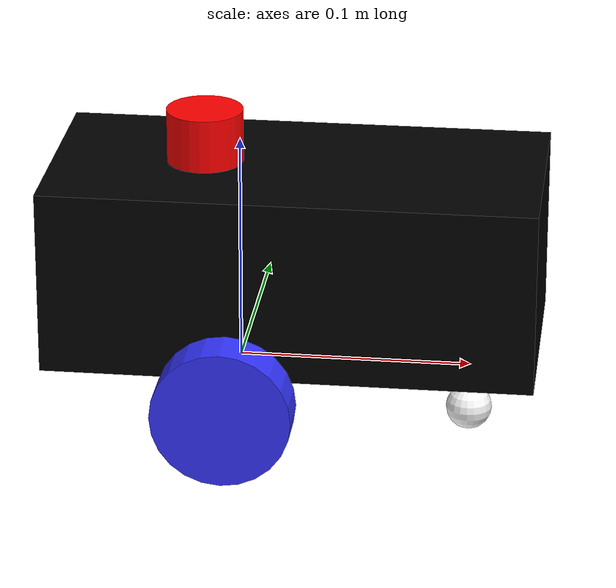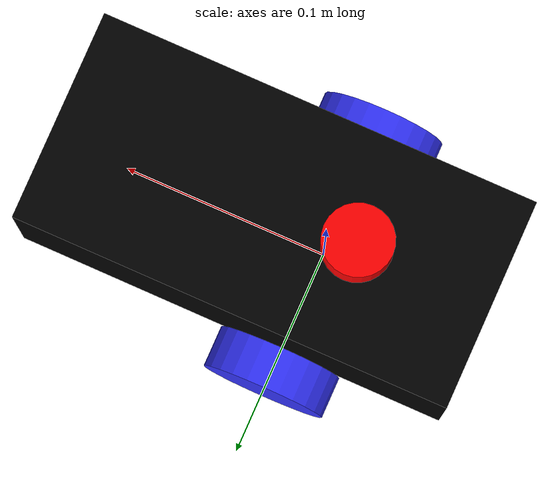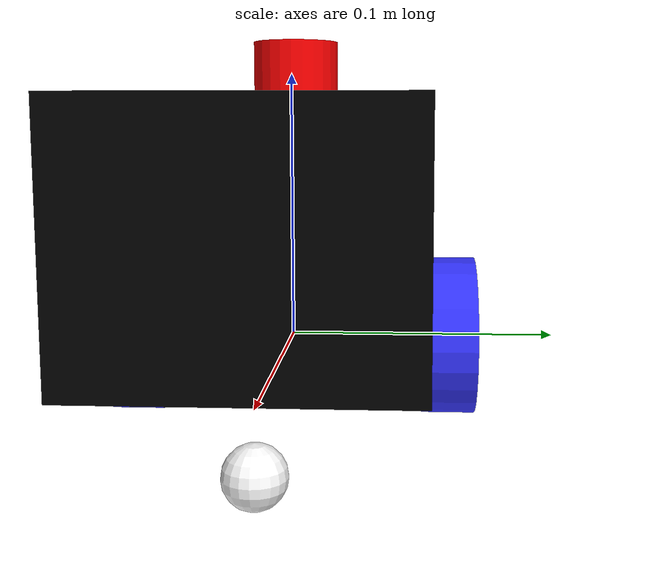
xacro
<?xml version="1.0"?>
<robot xmlns:xacro="http://www.ros.org/wiki/xacro"  name="robot">

  <xacro:arg name="use_ros2_control" default="true"/>
  <xacro:arg name="sim_mode" default="false"/>

  <xacro:include filename="robot_core.xacro" />

  <xacro:if value="$(arg use_ros2_control)">
      <xacro:include filename="ros2_control.xacro" />
  </xacro:if>
  <xacro:unless value="$(arg use_ros2_control)">
      <xacro:include filename="gazebo_control.xacro" />
  </xacro:unless>
  <xacro:include filename="lidar.xacro" />
  <xacro:include filename="imu.xacro" />

</robot>

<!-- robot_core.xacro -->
<robot xmlns:xacro="http://www.ros.org/wiki/xacro" >

    <xacro:include filename="inertial_macros.xacro"/>

    <xacro:property name="chassis_length" value="0.21"/>
    <xacro:property name="chassis_width" value="0.10"/>
    <xacro:property name="chassis_height" value="0.08"/>
    <xacro:property name="chassis_mass" value="1.0"/>
    <xacro:property name="wheel_radius" value="0.03"/>
    <xacro:property name="wheel_thickness" value="0.02"/>
    <xacro:property name="wheel_mass" value="0.05"/>
    <xacro:property name="wheel_offset_x" value="0.13"/>
    <xacro:property name="wheel_offset_y" value="0.06"/>
    <xacro:property name="wheel_offset_z" value="0.01"/>
    <xacro:property name="caster_wheel_radius" value="0.01"/>
    <xacro:property name="caster_wheel_mass" value="0.01"/>
    <xacro:property name="caster_wheel_offset_x" value="${chassis_length - 0.03}"/>
    <xacro:property name="caster_wheel_offset_z" value="${-wheel_offset_z - wheel_radius + caster_wheel_radius}"/>

    <material name="white">
        <color rgba="1 1 1 1" />
    </material>

    <material name="blue">
        <color rgba="0.2 0.2 1 1"/>
    </material>

    <material name="black">
        <color rgba="0 0 0 1"/>
    </material>

    <material name="red">
        <color rgba="1 0 0 1"/>
    </material>

    <!-- BASE LINK -->

    <link name="base_link">

    </link>

    <!-- BASE_FOOTPRINT LINK -->

    <joint name="base_footprint_joint" type="fixed">
        <parent link="base_link"/>
        <child link="base_footprint"/>
        <origin xyz="0 0 0" rpy="0 0 0"/>
    </joint>

    <link name="base_footprint">
    </link>

    <!-- CHASSIS LINK -->

    <joint name="chassis_joint" type="fixed">
        <parent link="base_link"/>
        <child link="chassis"/>
        <origin xyz="${-chassis_length + wheel_offset_x} 0 ${+wheel_offset_z}"/>
    </joint>

    <link name="chassis">
        <visual>
            <origin xyz="${chassis_length/2} 0 ${chassis_height/2}"/>
            <geometry>
                <box size="${chassis_length} ${chassis_width} ${chassis_height}"/>
            </geometry>
            <material name="black"/>
        </visual>
        <collision>
            <origin xyz="${chassis_length/2} 0 ${chassis_height/2}"/>
            <geometry>
                <box size="${chassis_length} ${chassis_width} ${chassis_height}"/>
            </geometry>
        </collision>
        <xacro:inertial_box mass="0.5" x="${chassis_length}" y="${chassis_width}" z="${chassis_height}">
            <origin xyz="${chassis_length/2} 0 ${chassis_height/2}" rpy="0 0 0"/>
        </xacro:inertial_box>
    </link>

    <gazebo reference="chassis">
        <material>Gazebo/Black</material>
    </gazebo>

    <!-- LEFT WHEEL LINK -->

    <joint name="left_wheel_joint" type="continuous">
        <parent link="base_link"/>
        <child link="left_wheel"/>
        <origin xyz="0 ${wheel_offset_y} 0" rpy="-${pi/2} 0 0" />
        <axis xyz="0 0 1"/>
    </joint>

    <link name="left_wheel">
        <visual>
            <geometry>
                <cylinder radius="${wheel_radius}" length="${wheel_thickness}"/>
            </geometry>
            <material name="blue"/>
        </visual>
        <collision>
            <geometry>
                <sphere radius="${wheel_radius}"/>
            </geometry>
        </collision>
        <xacro:inertial_cylinder mass="${wheel_mass}" length="${wheel_thickness}" radius="${wheel_radius}">
            <origin xyz="0 0 0" rpy="0 0 0"/>
        </xacro:inertial_cylinder>
    </link>

    <gazebo reference="left_wheel">
        <material>Gazebo/Blue</material>
    </gazebo>

    <!-- RIGHT WHEEL LINK -->

    <joint name="right_wheel_joint" type="continuous">
        <parent link="base_link"/>
        <child link="right_wheel"/>
        <origin xyz="0 ${-wheel_offset_y} 0" rpy="${pi/2} 0 0" />
        <axis xyz="0 0 -1"/>
    </joint>

    <link name="right_wheel">
        <visual>
            <geometry>
                <cylinder radius="${wheel_radius}" length="${wheel_thickness}"/>
            </geometry>
            <material name="blue"/>
        </visual>
        <collision>
            <geometry>
                <sphere radius="${wheel_radius}"/>
            </geometry>
        </collision>
        <xacro:inertial_cylinder mass="${wheel_mass}" length="${wheel_thickness}" radius="${wheel_radius}">
            <origin xyz="0 0 0" rpy="0 0 0"/>
        </xacro:inertial_cylinder>
    </link>

    <gazebo reference="right_wheel">
        <material>Gazebo/Blue</material>
    </gazebo>

    <!-- CASTER WHEEL LINK -->

    <joint name="caster_wheel_joint" type="fixed">
        <parent link="chassis"/>
        <child link="caster_wheel"/>
        <origin xyz="${caster_wheel_offset_x} 0 ${caster_wheel_offset_z}"/>
    </joint>

    <link name="caster_wheel">
        <visual>
            <geometry>
                <sphere radius="${caster_wheel_radius}"/>
            </geometry>
            <material name="white"/>
        </visual>
        <collision>
            <geometry>
                <sphere radius="${caster_wheel_radius}"/>
            </geometry>
        </collision>
        <xacro:inertial_sphere mass="${caster_wheel_mass}" radius="${caster_wheel_radius}">
            <origin xyz="0 0 0" rpy="0 0 0"/>
        </xacro:inertial_sphere>
    </link>

    <gazebo reference="caster_wheel">
        <material>Gazebo/White</material>
        <mu1 value="0.001"/>
        <mu2 value="0.001"/>
    </gazebo>

</robot>

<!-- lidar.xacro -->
<robot xmlns:xacro="http://www.ros.org/wiki/xacro" >

    <joint name="laser_joint" type="fixed">
        <parent link="chassis"/>
        <child link="laser_frame"/>
        <origin xyz="0.065 0 0.0865" rpy="0 0 -1.5708"/>
    </joint>

    <link name="laser_frame">
        <visual>
            <geometry>
                <cylinder radius="0.0165" length="0.033"/>
            </geometry>
            <material name="red"/>
        </visual>

        <collision>
            <geometry>
                <cylinder radius="0.05" length="0.04"/>
            </geometry>
        </collision>
        <xacro:inertial_cylinder mass="0.1" length="0.04" radius="0.05">
            <origin xyz="0 0 0" rpy="0 0 0"/>
        </xacro:inertial_cylinder>
    </link>

    <gazebo reference="laser_frame">
        <material>Gazebo/Red</material>
        <sensor name="laser" type="ray">
            <pose> 0 0 0.0165 0 0 0 </pose>
            <visualize>false</visualize>
            <update_rate>10</update_rate>
            <ray>
                <scan>
                    <horizontal>
                        <sample>360</sample>
                        <min_angle>-3.14</min_angle>
                        <max_angle>3.14</max_angle>
                    </horizontal>
                </scan>
                <range>
                    <min>0.3</min>
                    <max>12</max>
                </range>
            </ray>
            <plugin name="laser_controller" filename="libgazebo_ros_ray_sensor.so">
                <ros>
                    <argument>~/out:=scan</argument>
                </ros>
                <output_type>sensor_msgs/LaserScan</output_type>
                <frame_name>laser_frame</frame_name>
            </plugin>
        </sensor>
    </gazebo>

</robot>

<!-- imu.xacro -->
<robot xmlns:xacro="http://www.ros.org/wiki/xacro" >

    <xacro:property name="imu_parent_link" value="base_link" />

    <xacro:property name="imu_link_name" value="bno055" />

    <xacro:property name="imu_pos_x" value="0.0" />  <xacro:property name="imu_pos_y" value="0.0" />  <xacro:property name="imu_pos_z" value="0.0" /> <joint name="imu_joint" type="fixed">
        <parent link="${imu_parent_link}"/>
        <child link="${imu_link_name}"/>

        <origin xyz="${imu_pos_x} ${imu_pos_y} ${imu_pos_z}"

                rpy="0 0 0"/>
    </joint>

    <link name="${imu_link_name}">
        <visual>
            <geometry>
                <box size="0.03 0.052 0.01"/>
            </geometry>
            <material name="blue"/>
        </visual>
        <collision>
            <geometry>
                <box size="0.03 0.052 0.01"/>
            </geometry>
        </collision>

        <xacro:inertial_box mass="0.01" x="0.03" y="0.052" z="0.01">
            <origin xyz="0 0 0" rpy="0 0 0"/>
        </xacro:inertial_box>
    </link>

    <gazebo reference="${imu_link_name}">
        <material>Gazebo/Blue</material>
        <sensor name="imu_sensor" type="imu">
            <always_on>true</always_on>
            <update_rate>100</update_rate>
            <visualize>false</visualize>

            <plugin name="imu_plugin" filename="libgazebo_ros_imu_sensor.so">
                <ros>
                    <remapping>~/out:=/bno055/imu</remapping>
                </ros>
                <initial_orientation_as_reference>false</initial_orientation_as_reference>
            </plugin>

            <imu>
                <angular_velocity>
                    <x><noise type="gaussian"><mean>0.0</mean><stddev>2e-4</stddev></noise></x>
                    <y><noise type="gaussian"><mean>0.0</mean><stddev>2e-4</stddev></noise></y>
                    <z><noise type="gaussian"><mean>0.0</mean><stddev>2e-4</stddev></noise></z>
                </angular_velocity>
                <linear_acceleration>
                    <x><noise type="gaussian"><mean>0.0</mean><stddev>1.7e-2</stddev></noise></x>
                    <y><noise type="gaussian"><mean>0.0</mean><stddev>1.7e-2</stddev></noise></y>
                    <z><noise type="gaussian"><mean>0.0</mean><stddev>1.7e-2</stddev></noise></z>
                </linear_acceleration>
            </imu>
        </sensor>
    </gazebo>

</robot>
